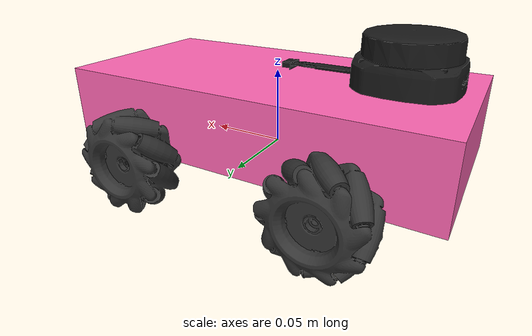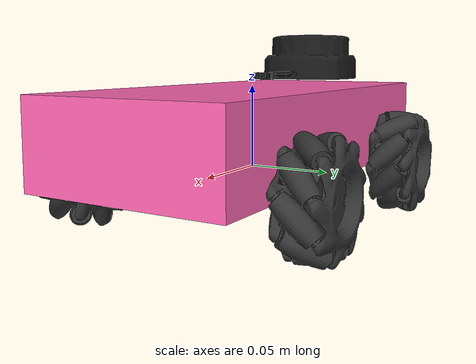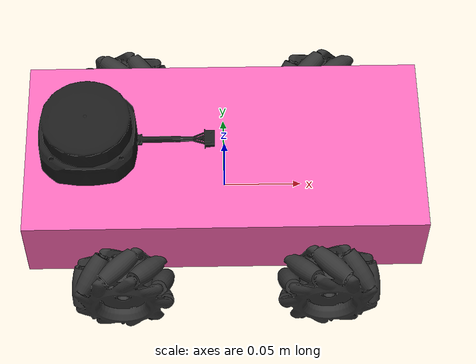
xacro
<?xml version="1.0"?>
<robot xmlns:xacro="http://www.ros.org/wiki/xacro" name="rosmaster_x3">

    <xacro:property name="M_PI" value="3.1415926535897931" />

    <xacro:arg name="robot_name" default="rosmaster_x3"/>
    <xacro:arg name="prefix" default=""/>
    <xacro:arg name="use_gazebo" default="false"/>

    <xacro:include filename="$(find yahboom_rosmaster_description)/urdf/mech/rosmaster_x3_base.urdf.xacro"/>
    <xacro:include filename="$(find yahboom_rosmaster_description)/urdf/mech/mecanum_wheel.urdf.xacro"/>
    <xacro:include filename="$(find yahboom_rosmaster_description)/urdf/sensors/rgbd_camera.urdf.xacro"/>
    <xacro:include filename="$(find yahboom_rosmaster_description)/urdf/sensors/lidar.urdf.xacro"/>
    <xacro:include filename="$(find yahboom_rosmaster_description)/urdf/sensors/imu.urdf.xacro"/>

    <xacro:rosmaster_x3_base prefix="$(arg prefix)"/>

    <xacro:mecanum_wheel
      prefix="$(arg prefix)"
      side="front_left"
      x_reflect="1"
      y_reflect="1"/>

    <xacro:mecanum_wheel
      prefix="$(arg prefix)"
      side="front_right"
      x_reflect="1"
      y_reflect="-1"/>

    <xacro:mecanum_wheel
      prefix="$(arg prefix)"
      side="back_left"
      x_reflect="-1"
      y_reflect="1"/>

    <xacro:mecanum_wheel
      prefix="$(arg prefix)"
      side="back_right"
      x_reflect="-1"
      y_reflect="-1"/>

    <xacro:lidar_sensor
      prefix="$(arg prefix)"
      parent="base_link"
      frame_id="laser_frame"
      xyz_offset="-0.085 0 0.045"
      rpy_offset="0 0 0"
      mesh_xyz_offset="0 0 0"
      mesh_rpy_offset="${-M_PI/2} 0 0"
      topic_name="$(arg robot_name)/scan"/>

    <xacro:include filename="$(find yahboom_rosmaster_description)/urdf/control/velocity_control_plugin.urdf.xacro" />
    <xacro:load_velocity_control_plugin use_gazebo="$(arg use_gazebo)"/>

    <xacro:include filename="$(find yahboom_rosmaster_description)/urdf/control/gazebo_sim_ros2_control.urdf.xacro" />
    <xacro:load_gazebo_sim_ros2_control_plugin
      robot_name="$(arg robot_name)"
      use_gazebo="$(arg use_gazebo)"/>

    <xacro:include filename="$(find yahboom_rosmaster_description)/urdf/control/rosmaster_x3_ros2_control.urdf.xacro" />
    <xacro:yahboom_rosmaster_ros2_control
      prefix="$(arg prefix)"
      use_gazebo="$(arg use_gazebo)"/>

</robot>

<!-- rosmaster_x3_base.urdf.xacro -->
<robot xmlns:xacro="http://www.ros.org/wiki/xacro">
<xacro:property name="total_width" value="0.12" />
<xacro:property name="wheel_width" value="0.02" />
<xacro:property name="wheel_radius" value="0.024" />
<xacro:property name="total_height" value="0.05" />
<xacro:property name="base_length" value="0.25" />
<xacro:property name="centered_length" value="0.119" />
<xacro:property name="base_x_offset" value="${(centered_length - base_length) / 2}" />
<xacro:property name="base_size_x" value="${base_length}" />
<xacro:property name="base_size_y" value="${total_width - (2 * wheel_width)}" />
<xacro:property name="base_size_z" value="${total_height - (2 * wheel_radius)}" />
<xacro:property name="base_mass" value="0.8" />

<xacro:macro name="rosmaster_x3_base" params="prefix">
  <link name="${prefix}base_footprint"/>
  <link name="${prefix}base_link">
    <visual>
        <geometry>
            <box size="0.25 0.12 0.05"/>
        </geometry>
        <material name="pink">
          <color rgba="1.0 0.4 0.7 1.0"/>
        </material>
        <origin xyz="0 0 0" rpy="0 0 0"/>
    </visual>
    <collision>
        <geometry>
            <box size="${base_size_x} ${base_size_y} ${base_size_z}"/>
        </geometry>
        <origin xyz="${base_x_offset} 0 ${base_size_z/2 + wheel_radius/4}" rpy="0 0 0"/>
    </collision>
    <inertial>
        <origin xyz="${base_x_offset} 0 ${base_size_z/2 + wheel_radius/4}" rpy="0 0 0"/>
        <mass value="${base_mass}"/>
        <inertia
            ixx="${(1/12) * base_mass * ((base_size_y * base_size_y) + (base_size_z * base_size_z))}" ixy="0.0" ixz="0.0"
            iyy="${(1/12) * base_mass * ((base_size_x * base_size_x) + (base_size_z * base_size_z))}" iyz="0.0"
            izz="${(1/12) * base_mass * ((base_size_x * base_size_x) + (base_size_y * base_size_y))}"/>
    </inertial>
  </link>
  <gazebo reference="${prefix}base_link">
    <visual>
        <material>
            <ambient>1.0 0.4 0.7 1.0</ambient>
            <diffuse>1.0 0.4 0.7 1.0</diffuse>
            <specular>1.0 0.4 0.7 1.0</specular>
        </material>
    </visual>
  </gazebo>
  <joint name="${prefix}base_joint" type="fixed">
    <parent link="${prefix}base_footprint"/>
    <child link="${prefix}base_link"/>
    <origin xyz="0 0 ${wheel_radius}" rpy="0 0 0"/>
  </joint>
</xacro:macro>
</robot>

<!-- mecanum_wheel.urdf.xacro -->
<robot xmlns:xacro="http://www.ros.org/wiki/xacro">

  <xacro:property name="wheel_radius" value="0.024" />
  <xacro:property name="wheel_separation" value="0.169" />
  <xacro:property name="wheel_width" value="0.0304" />
  <xacro:property name="wheel_mass" value="0.1" />
  <xacro:property name="wheel_xoff" value="0.065" />
  <xacro:property name="wheel_yoff" value="-0.01" />

  <xacro:macro name="mecanum_wheel" params="prefix side x_reflect y_reflect">
    <link name="${prefix}${side}_wheel_link">
      <visual>
        <origin xyz="0 0 0" rpy="${pi/2} 0 0"/>
        <geometry>
          <mesh filename="file://$(find yahboom_rosmaster_description)/meshes/rosmaster_x3/visual/${side}_wheel_X3.STL"/>
        </geometry>
        <material name="dark_gray">
          <color rgba="0.2 0.2 0.2 1.0"/>
        </material>
      </visual>

      <collision>
        <origin xyz="0 0 0" rpy="${pi/2} 0 0"/>
        <geometry>
          <cylinder radius="${wheel_radius}" length="${wheel_width}"/>
        </geometry>
      </collision>

      <inertial>
        <origin xyz="0 0 0" rpy="0 0 0"/>
        <mass value="${wheel_mass}"/>
        <inertia
          ixx="${(wheel_mass/12.0) * (3*wheel_radius*wheel_radius + wheel_width*wheel_width)}" ixy="0" ixz="0"
          iyy="${(wheel_mass/2.0) * (wheel_radius*wheel_radius)}" iyz="0"
          izz="${(wheel_mass/12.0) * (3*wheel_radius*wheel_radius + wheel_width*wheel_width)}"/>
      </inertial>
    </link>

    <joint name="${prefix}${side}_wheel_joint" type="continuous">
      <axis xyz="0 1 0"/>
      <parent link="${prefix}base_link"/>
      <child link="${prefix}${side}_wheel_link"/>
      <origin xyz="${x_reflect*wheel_xoff} ${y_reflect*(wheel_separation/2+wheel_yoff)} ${-wheel_radius}" rpy="0 0 0"/>
    </joint>

    <gazebo reference="${prefix}${side}_wheel_link">
      <surface>
        <friction>
          <ode>
              <mu>1.0</mu>
              <mu2>0.0</mu2>
          </ode>
        </friction>
      </surface>
      <visual>
          <material>
              <ambient>0.2 0.2 0.2 1.0</ambient>
              <diffuse>0.2 0.2 0.2 1.0</diffuse>
              <specular>0.2 0.2 0.2 1.0</specular>
              <emissive>0.0 0.0 0.0 0.0</emissive>
          </material>
      </visual>
  </gazebo>

  </xacro:macro>
</robot>

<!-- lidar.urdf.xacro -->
<robot xmlns:xacro="http://www.ros.org/wiki/xacro">
  <xacro:property name="M_PI" value="3.1415926535897931" />

  <xacro:macro name="lidar_sensor" params="
    prefix:=''
    parent:='base_link'
    frame_id:='laser_frame'
    mesh_file:='file://$(find yahboom_rosmaster_description)/meshes/rplidar/rplidar_s2.stl'
    xyz_offset:='0 0 0.05'
    rpy_offset:='0 0 0'
    mesh_xyz_offset:='0 0 0'
    mesh_rpy_offset:='${-M_PI/2} 0 0'
    mesh_scale:='0.0008 0.0008 0.0008'
    collision_xyz_offset:='0 0 0'
    collision_rpy_offset:='0 0 0'
    inertial_xyz_offset:='0 0 0'
    inertial_rpy_offset:='0 0 0'
    lidar_width:=0.055
    lidar_height:=0.0413
    mass:=0.1
    material_name:='rplidar_black'
    material_color:='0.1 0.1 0.1 1'
    gazebo_material_ambient:='0.1 0.1 0.1 1'
    gazebo_material_diffuse:='0.1 0.1 0.1 1'
    gazebo_material_specular:='0.1 0.1 0.1 1'
    update_rate:=10
    ray_count:=10
    min_angle:='-3.14159'
    max_angle:='3.14159'
    min_range:='0.05'
    max_range:='1.20'
    range_resolution:='0.013'
    topic_name:='scan'
    always_on:=true
    visualize:=false
    enable_collision:=false">

    <xacro:property name="radius" value="${lidar_width/2}" />
    <xacro:property name="ixx_iyy" value="${(mass/12) * (3 * radius * radius + lidar_height * lidar_height)}" />
    <xacro:property name="izz" value="${(mass/2) * (radius * radius)}" />

    <link name="${prefix}${frame_id}">
      <visual>
        <origin xyz="${mesh_xyz_offset}" rpy="${mesh_rpy_offset}"/>
        <geometry>
          <mesh filename="${mesh_file}" scale="${mesh_scale}"/>
        </geometry>
        <material name="${material_name}">
          <color rgba="${material_color}"/>
        </material>
      </visual>

      <xacro:if value="${enable_collision}">
        <collision>
          <origin xyz="${collision_xyz_offset}" rpy="${collision_rpy_offset}"/>
          <geometry>
            <cylinder radius="${lidar_width/2}" length="${lidar_height}"/>
          </geometry>
        </collision>
      </xacro:if>

      <inertial>
        <mass value="${mass}" />
        <origin xyz="${inertial_xyz_offset}" rpy="${inertial_rpy_offset}"/>
        <inertia
          ixx="${ixx_iyy}"
          ixy="0.0"
          ixz="0.0"
          iyy="${ixx_iyy}"
          iyz="0.0"
          izz="${izz}" />
      </inertial>
    </link>

    <joint name="${prefix}${frame_id}_joint" type="fixed">
      <parent link="${prefix}${parent}"/>
      <child link="${prefix}${frame_id}" />
      <origin xyz="${xyz_offset}" rpy="${rpy_offset}"/>
    </joint>

    <gazebo reference="${prefix}${frame_id}">
      <material>
        <ambient>${gazebo_material_ambient}</ambient>
        <diffuse>${gazebo_material_diffuse}</diffuse>
        <specular>${gazebo_material_specular}</specular>
      </material>
      <sensor name="${prefix}lidar_sensor" type="gpu_lidar">
        <topic>${topic_name}</topic>
        <update_rate>${update_rate}</update_rate>
        <always_on>${always_on}</always_on>
        <visualize>${visualize}</visualize>
        <ray>
          <scan>
            <horizontal>
              <samples>${ray_count}</samples>
              <resolution>1</resolution>
              <min_angle>${min_angle}</min_angle>
              <max_angle>${max_angle}</max_angle>
            </horizontal>
            <vertical>
              <samples>1</samples>
              <resolution>1</resolution>
              <min_angle>0</min_angle>
              <max_angle>0</max_angle>
            </vertical>
          </scan>
          <range>
            <min>${min_range}</min>
            <max>${max_range}</max>
            <resolution>${range_resolution}</resolution>
          </range>
        </ray>
        <gz_frame_id>${prefix}${frame_id}</gz_frame_id>
      </sensor>
    </gazebo>
  </xacro:macro>
</robot>

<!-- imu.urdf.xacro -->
<robot xmlns:xacro="http://www.ros.org/wiki/xacro">
    <xacro:property name="M_PI" value="3.1415926535897931" />

    <xacro:macro name="imu_sensor" params="
        prefix:=''
        parent:='base_link'
        frame_id:='imu'
        xyz_offset:='0 0 0'
        rpy_offset:='0 0 0'
        inertial_xyz_offset:='0 0 0'
        inertial_rpy_offset:='0 0 0'
        mass:=0.031
        length:=0.03899
        width:=0.03785
        height:=0.01338
        material_name:='imu_black'
        material_color:='0.1 0.1 0.1 1'
        gazebo_material_ambient:='0.1 0.1 0.1 1'
        gazebo_material_diffuse:='0.1 0.1 0.1 1'
        gazebo_material_specular:='0.1 0.1 0.1 1'
        update_rate:='15.0'
        topic_name:='imu/data'
        always_on:=true
        visualize:=false">

        <xacro:property name="ixx" value="${(mass/12.0) * (height*height + width*width)}" />
        <xacro:property name="iyy" value="${(mass/12.0) * (length*length + height*height)}" />
        <xacro:property name="izz" value="${(mass/12.0) * (length*length + width*width)}" />

        <link name="${prefix}${frame_id}_link">
            <visual>
                <origin xyz="0 0 0" rpy="0 0 0"/>
                <geometry>
                    <box size="${length} ${width} ${height}"/>
                </geometry>
                <material name="${material_name}">
                    <color rgba="${material_color}"/>
                </material>
            </visual>

            <inertial>
                <mass value="${mass}" />
                <origin xyz="${inertial_xyz_offset}" rpy="${inertial_rpy_offset}"/>
                <inertia
                    ixx="${ixx}"
                    ixy="0.0"
                    ixz="0.0"
                    iyy="${iyy}"
                    iyz="0.0"
                    izz="${izz}" />
            </inertial>
        </link>

        <joint name="${prefix}${frame_id}_joint" type="fixed">
            <parent link="${prefix}${parent}"/>
            <child link="${prefix}${frame_id}_link" />
            <origin xyz="${xyz_offset}" rpy="${rpy_offset}"/>
        </joint>

        <gazebo reference="${prefix}${frame_id}_link">
            <material>
                <ambient>${gazebo_material_ambient}</ambient>
                <diffuse>${gazebo_material_diffuse}</diffuse>
                <specular>${gazebo_material_specular}</specular>
            </material>
            <sensor name="${prefix}imu_sensor" type="imu">
                <topic>${topic_name}</topic>
                <update_rate>${update_rate}</update_rate>
                <always_on>${always_on}</always_on>
                <visualize>${visualize}</visualize>
                <gz_frame_id>${prefix}${frame_id}_link</gz_frame_id>
            </sensor>
        </gazebo>
    </xacro:macro>
</robot>
